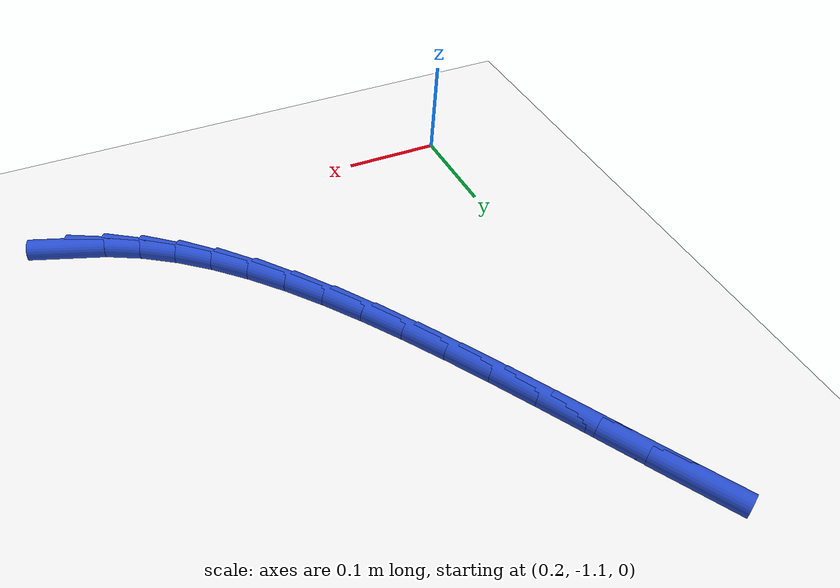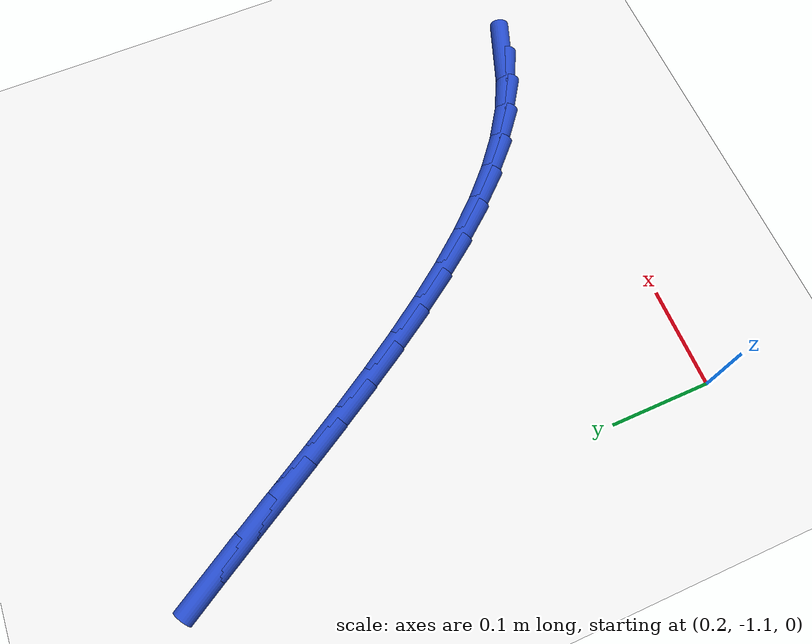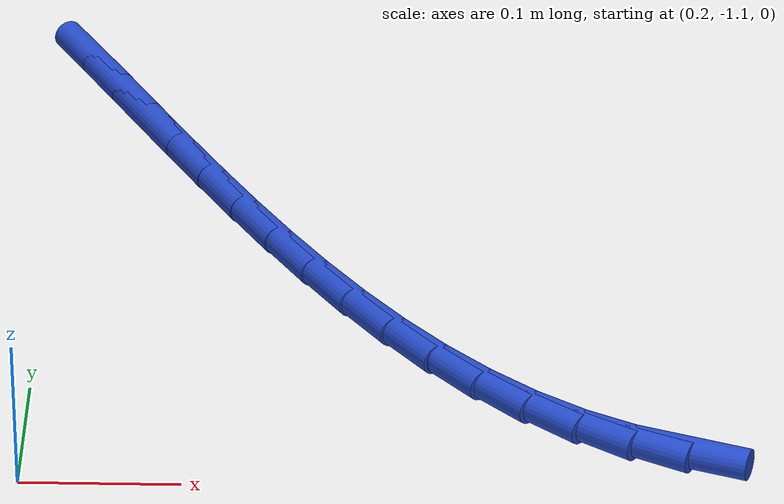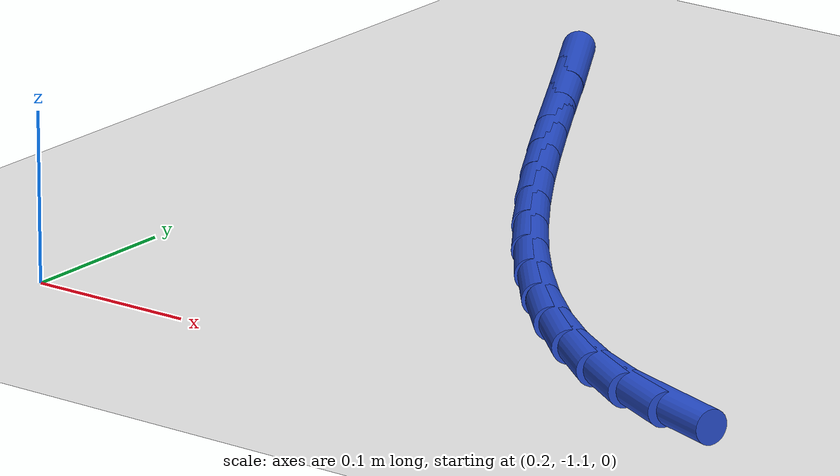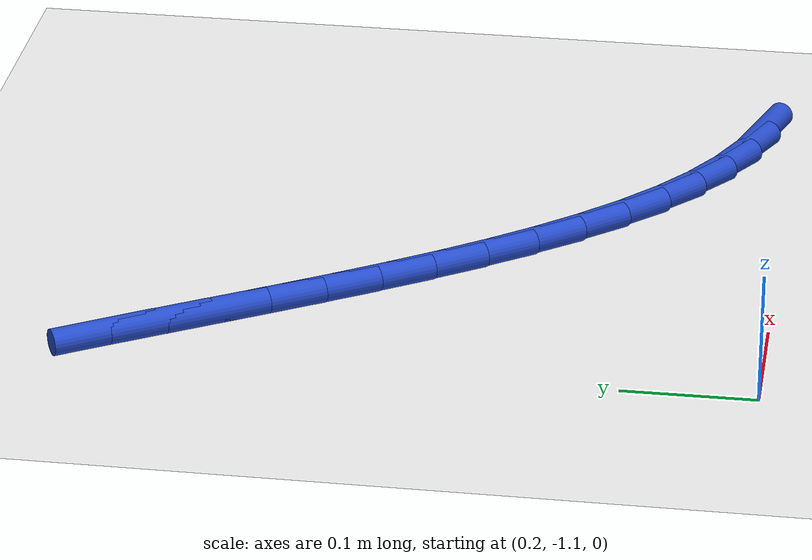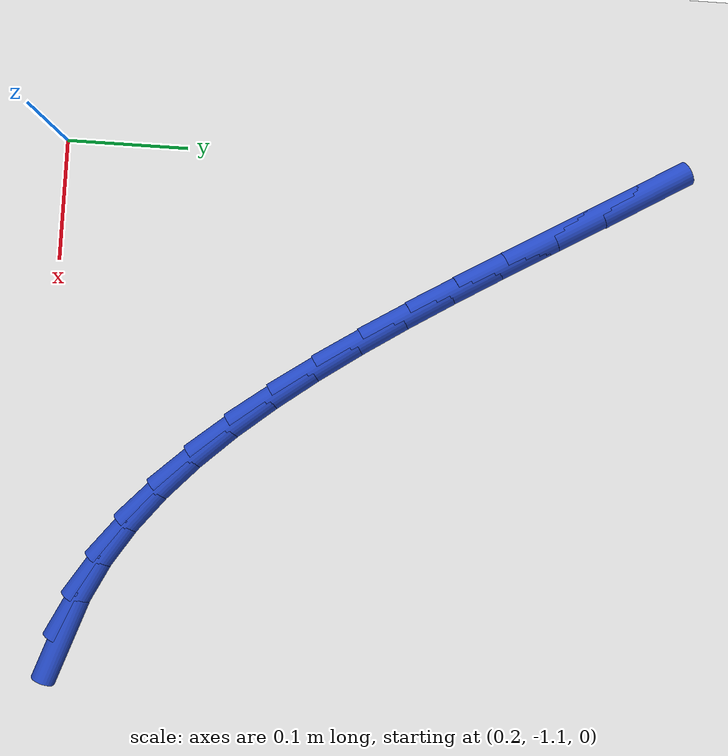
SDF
<sdf version="1.6">
 <world name="default">
  <model name="ground_plane">
   <static>1</static>
   <link name="link">
    <collision name="collision">
     <geometry><plane><normal>0 0 1</normal><size>100 100</size></plane></geometry>
     <surface><friction><ode><mu>100</mu><mu2>50</mu2></ode></friction></surface>
    </collision>
    <visual name="visual">
     <cast_shadows>0</cast_shadows>
     <geometry><plane><normal>0 0 1</normal><size>100 100</size></plane></geometry>
     <material>
      <script><uri>file://media/materials/scripts/gazebo.material</uri><name>Gazebo/WhiteGlow</name></script>
     </material>
    </visual>
   </link>
  </model>
  <model name="line">
   <link name="link_158">
    <pose>0.6089597970001736 -1.0735212957873719 0.01 0 1.57 -0.33531662369798565</pose>
    <collision name="collision">
     <geometry><cylinder><radius>0.01</radius><length>0.08</length></cylinder></geometry>
    </collision>
    <visual name="visual">
     <material>
      <script><name>Gazebo/Blue</name><uri>file://media/materials/scripts/gazebo.material</uri></script>
     </material>
     <geometry><cylinder><radius>0.01</radius><length>0.08</length></cylinder></geometry>
    </visual>
   </link>
   <link name="link_159">
    <pose>0.5758091394133616 -1.0619690823015568 0.01 0 1.57 -0.46299162878597244</pose>
    <collision name="collision">
     <geometry><cylinder><radius>0.01</radius><length>0.08</length></cylinder></geometry>
    </collision>
    <visual name="visual">
     <material>
      <script><name>Gazebo/Blue</name><uri>file://media/materials/scripts/gazebo.material</uri></script>
     </material>
     <geometry><cylinder><radius>0.01</radius><length>0.08</length></cylinder></geometry>
    </visual>
   </link>
   <link name="link_160">
    <pose>0.544006129431359 -1.0460936464455268 0.01 0 1.57 -0.5755275193417806</pose>
    <collision name="collision">
     <geometry><cylinder><radius>0.01</radius><length>0.08</length></cylinder></geometry>
    </collision>
    <visual name="visual">
     <material>
      <script><name>Gazebo/Blue</name><uri>file://media/materials/scripts/gazebo.material</uri></script>
     </material>
     <geometry><cylinder><radius>0.01</radius><length>0.08</length></cylinder></geometry>
    </visual>
   </link>
   <link name="link_161">
    <pose>0.513467406818999 -1.026280281748728 0.01 0 1.57 -0.6722386605759927</pose>
    <collision name="collision">
     <geometry><cylinder><radius>0.01</radius><length>0.08</length></cylinder></geometry>
    </collision>
    <visual name="visual">
     <material>
      <script><name>Gazebo/Blue</name><uri>file://media/materials/scripts/gazebo.material</uri></script>
     </material>
     <geometry><cylinder><radius>0.01</radius><length>0.08</length></cylinder></geometry>
    </visual>
   </link>
   <link name="link_162">
    <pose>0.4841096113411158 -1.0029142817406063 0.01 0 1.57 -0.753892361513752</pose>
    <collision name="collision">
     <geometry><cylinder><radius>0.01</radius><length>0.08</length></cylinder></geometry>
    </collision>
    <visual name="visual">
     <material>
      <script><name>Gazebo/Blue</name><uri>file://media/materials/scripts/gazebo.material</uri></script>
     </material>
     <geometry><cylinder><radius>0.01</radius><length>0.08</length></cylinder></geometry>
    </visual>
   </link>
   <link name="link_163">
    <pose>0.45584938276254267 -0.9763809399506077 0.01 0 1.57 -0.8219680699608524</pose>
    <collision name="collision">
     <geometry><cylinder><radius>0.01</radius><length>0.08</length></cylinder></geometry>
    </collision>
    <visual name="visual">
     <material>
      <script><name>Gazebo/Blue</name><uri>file://media/materials/scripts/gazebo.material</uri></script>
     </material>
     <geometry><cylinder><radius>0.01</radius><length>0.08</length></cylinder></geometry>
    </visual>
   </link>
   <link name="link_164">
    <pose>0.428603360848113 -0.947065549908178 0.01 0 1.57 -0.8781387483055451</pose>
    <collision name="collision">
     <geometry><cylinder><radius>0.01</radius><length>0.08</length></cylinder></geometry>
    </collision>
    <visual name="visual">
     <material>
      <script><name>Gazebo/Blue</name><uri>file://media/materials/scripts/gazebo.material</uri></script>
     </material>
     <geometry><cylinder><radius>0.01</radius><length>0.08</length></cylinder></geometry>
    </visual>
   </link>
   <link name="link_165">
    <pose>0.4022881853626604 -0.9153534051427629 0.01 0 1.57 -0.923982652746476</pose>
    <collision name="collision">
     <geometry><cylinder><radius>0.01</radius><length>0.08</length></cylinder></geometry>
    </collision>
    <visual name="visual">
     <material>
      <script><name>Gazebo/Blue</name><uri>file://media/materials/scripts/gazebo.material</uri></script>
     </material>
     <geometry><cylinder><radius>0.01</radius><length>0.08</length></cylinder></geometry>
    </visual>
   </link>
   <link name="link_166">
    <pose>0.37682049607101864 -0.881629799183809 0.01 0 1.57 -0.960854488855362</pose>
    <collision name="collision">
     <geometry><cylinder><radius>0.01</radius><length>0.08</length></cylinder></geometry>
    </collision>
    <visual name="visual">
     <material>
      <script><name>Gazebo/Blue</name><uri>file://media/materials/scripts/gazebo.material</uri></script>
     </material>
     <geometry><cylinder><radius>0.01</radius><length>0.08</length></cylinder></geometry>
    </visual>
   </link>
   <link name="link_167">
    <pose>0.35211693273802036 -0.8462800255607611 0.01 0 1.57 -0.9898454378439151</pose>
    <collision name="collision">
     <geometry><cylinder><radius>0.01</radius><length>0.08</length></cylinder></geometry>
    </collision>
    <visual name="visual">
     <material>
      <script><name>Gazebo/Blue</name><uri>file://media/materials/scripts/gazebo.material</uri></script>
     </material>
     <geometry><cylinder><radius>0.01</radius><length>0.08</length></cylinder></geometry>
    </visual>
   </link>
   <link name="link_168">
    <pose>0.3280941351284995 -0.8096893778030657 0.01 0 1.57 -1.0117842529406353</pose>
    <collision name="collision">
     <geometry><cylinder><radius>0.01</radius><length>0.08</length></cylinder></geometry>
    </collision>
    <visual name="visual">
     <material>
      <script><name>Gazebo/Blue</name><uri>file://media/materials/scripts/gazebo.material</uri></script>
     </material>
     <geometry><cylinder><radius>0.01</radius><length>0.08</length></cylinder></geometry>
    </visual>
   </link>
   <link name="link_169">
    <pose>0.3046687430072894 -0.7722431494401681 0.01 0 1.57 -1.027252035699643</pose>
    <collision name="collision">
     <geometry><cylinder><radius>0.01</radius><length>0.08</length></cylinder></geometry>
    </collision>
    <visual name="visual">
     <material>
      <script><name>Gazebo/Blue</name><uri>file://media/materials/scripts/gazebo.material</uri></script>
     </material>
     <geometry><cylinder><radius>0.01</radius><length>0.08</length></cylinder></geometry>
    </visual>
   </link>
   <link name="link_170">
    <pose>0.2817573961392238 -0.7343266340015149 0.01 0 1.57 -1.0365962865307472</pose>
    <collision name="collision">
     <geometry><cylinder><radius>0.01</radius><length>0.08</length></cylinder></geometry>
    </collision>
    <visual name="visual">
     <material>
      <script><name>Gazebo/Blue</name><uri>file://media/materials/scripts/gazebo.material</uri></script>
     </material>
     <geometry><cylinder><radius>0.01</radius><length>0.08</length></cylinder></geometry>
    </visual>
   </link>
   <link name="link_171">
    <pose>0.25927673428913595 -0.6963251250165517 0.01 0 1.57 -1.039936691310105</pose>
    <collision name="collision">
     <geometry><cylinder><radius>0.01</radius><length>0.08</length></cylinder></geometry>
    </collision>
    <visual name="visual">
     <material>
      <script><name>Gazebo/Blue</name><uri>file://media/materials/scripts/gazebo.material</uri></script>
     </material>
     <geometry><cylinder><radius>0.01</radius><length>0.08</length></cylinder></geometry>
    </visual>
   </link>
   <link name="link_172">
    <pose>0.23714339722185993 -0.6586239160147253 0.01 0 1.57 -1.0371580448183166</pose>
    <collision name="collision">
     <geometry><cylinder><radius>0.01</radius><length>0.08</length></cylinder></geometry>
    </collision>
    <visual name="visual">
     <material>
      <script><name>Gazebo/Blue</name><uri>file://media/materials/scripts/gazebo.material</uri></script>
     </material>
     <geometry><cylinder><radius>0.01</radius><length>0.08</length></cylinder></geometry>
    </visual>
   </link>
   <link name="link_173">
    <pose>0.21527402470222815 -0.6216083005254797 0.01 0 1.57 -1.0290415107983077</pose>
    <collision name="collision">
     <geometry><cylinder><radius>0.01</radius><length>0.08</length></cylinder></geometry>
    </collision>
    <visual name="visual">
     <material>
      <script><name>Gazebo/Blue</name><uri>file://media/materials/scripts/gazebo.material</uri></script>
     </material>
     <geometry><cylinder><radius>0.01</radius><length>0.08</length></cylinder></geometry>
    </visual>
   </link>
  </model>
 </world>
</sdf>
